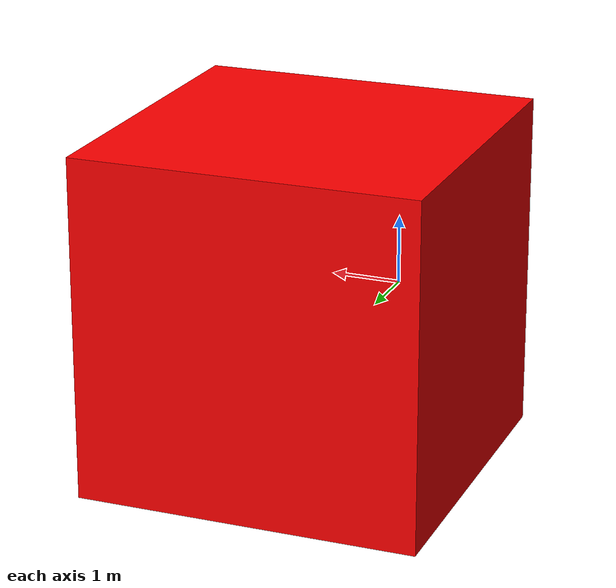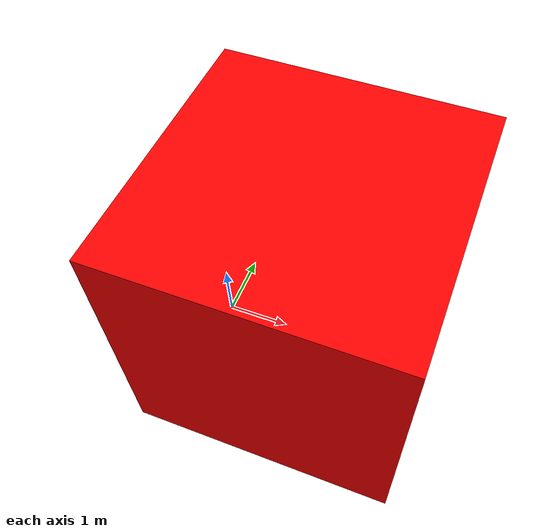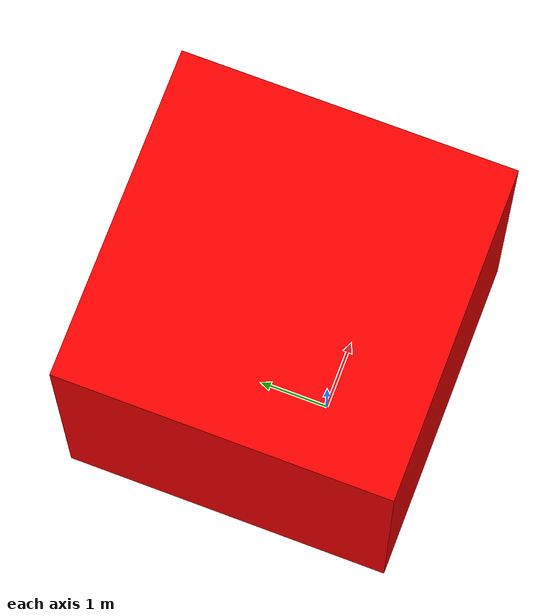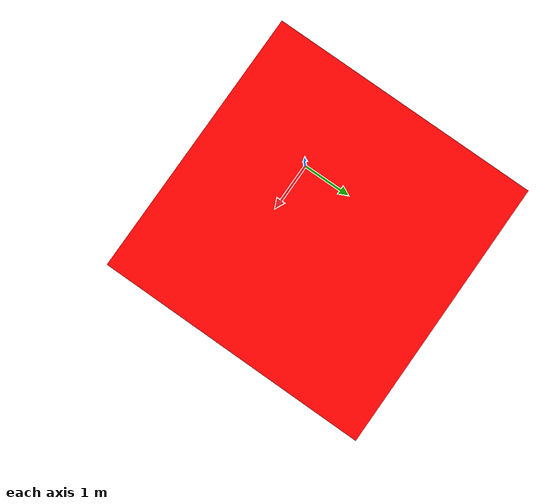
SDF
<?xml version='1.0'?>
<sdf version="1.5">
    <world name="Example World">
        <physics name="default_physics" default="true" type="ode">
          <max_step_size>0.002</max_step_size>
          <real_time_factor>1</real_time_factor>
          <real_time_update_rate>500</real_time_update_rate>
          <ode>
            <solver>
              <type>quick</type>
              <iters>50</iters>
              <sor>0.5</sor>
            </solver>
          </ode>
        </physics>

        <scene>
            <ambient>0.01 0.01 0.01 1.0</ambient>
            <sky>
                <clouds>
                    <speed>12</speed>
                </clouds>
            </sky>
            <shadows>1</shadows>
            <fog>
                <color>0.1 0.2 0.3 1.0</color>
                <type>linear</type>
                <density>0.001</density>
                <start>10</start>
                <end>200</end>
            </fog>
        </scene>

        <model name="Cube0">
            <pose> 1 1 0 0 0 0 </pose>
            <link name="link">
                <visual name="visual">
                    <geometry>
                        <box>
                            <size>5 5 5</size>
                        </box>
                    </geometry>
                    <material>
                        <ambient> 1 0 0 1 </ambient>
                        <diffuse> 1 0 0 1 </diffuse>
                        <specular> 1 0 0 1 </specular>
                        <emissive> 1 0 0 1 </emissive>
                    </material>
                </visual>
            </link>
        </model>

  </world>
</sdf>
